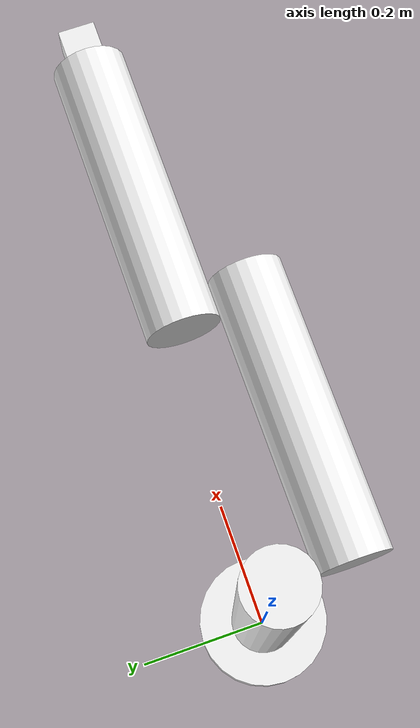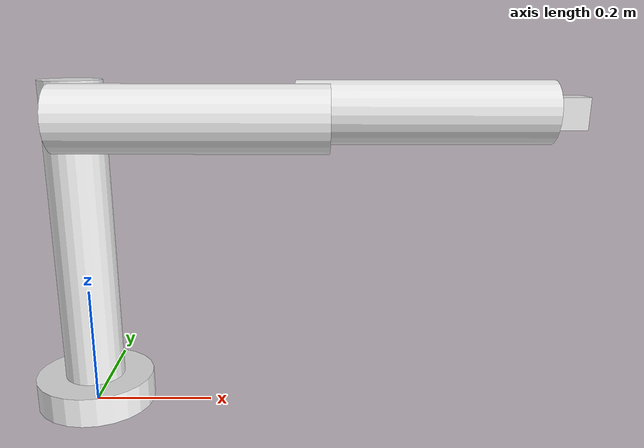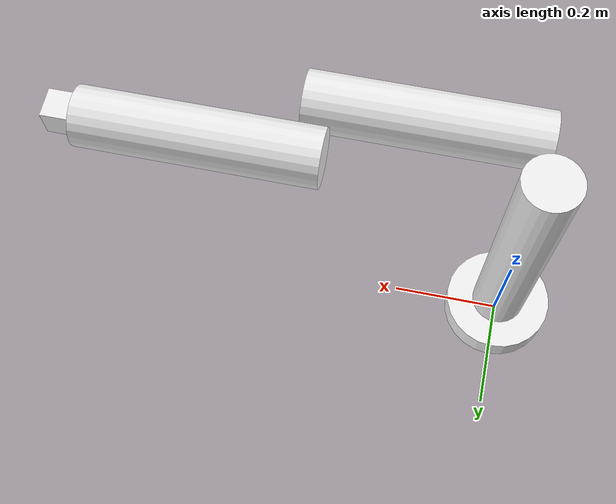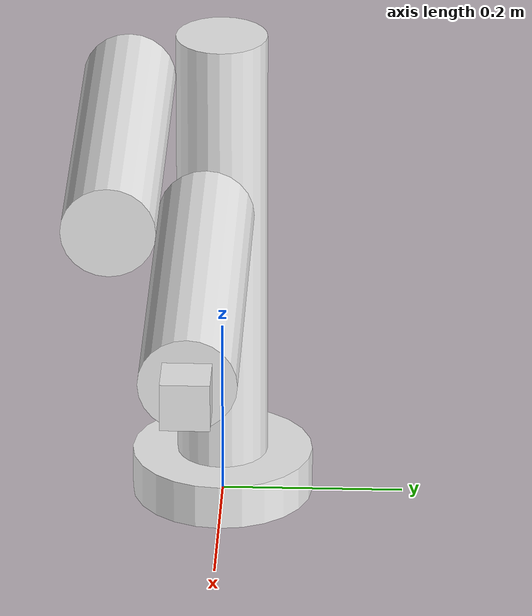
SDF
<sdf version='1.11'>
  <model name='pinchy'>
    <link name='root'>
      <inertial>
        <pose>0 0 2.4975024975024978e-05 0 0 0</pose>
        <mass>1001</mass>
        <inertia>
          <ixx>0.0033243756243756251</ixx>
          <ixy>0</ixy>
          <ixz>0</ixz>
          <iyy>0.0033243756243756251</iyy>
          <iyz>0</iyz>
          <izz>0.0050000000000000001</izz>
        </inertia>
      </inertial>
      <collision name='root_fixed_joint_lump__massive_block_collision_collision'>
        <pose>0 0 0 0 0 0</pose>
        <geometry>
          <box>
            <size>0.10000000000000001 0.10000000000000001 0.0001</size>
          </box>
        </geometry>
      </collision>
      <collision name='root_fixed_joint_lump__base_link_collision_1'>
        <pose>0 0 0.025000000000000001 0 0 0</pose>
        <geometry>
          <cylinder>
            <length>0.050000000000000003</length>
            <radius>0.10000000000000001</radius>
          </cylinder>
        </geometry>
      </collision>
      <visual name='root_fixed_joint_lump__massive_block_visual_visual'>
        <pose>0 0 0 0 0 0</pose>
        <geometry>
          <box>
            <size>0.10000000000000001 0.10000000000000001 0.0001</size>
          </box>
        </geometry>
        <material>
          <diffuse>0 0 0 0</diffuse>
          <ambient>0 0 0 0</ambient>
        </material>
      </visual>
      <visual name='root_fixed_joint_lump__base_link_visual_1'>
        <pose>0 0 0.025000000000000001 0 0 0</pose>
        <geometry>
          <cylinder>
            <length>0.050000000000000003</length>
            <radius>0.10000000000000001</radius>
          </cylinder>
        </geometry>
        <material>
          <diffuse>0.9375 0.9375 0.9375 1</diffuse>
          <ambient>0.9375 0.9375 0.9375 1</ambient>
        </material>
      </visual>
    </link>
    <joint name='base_link_to_torso' type='revolute'>
      <pose relative_to='root'>0 0 0.050000000000000003 0 0 0</pose>
      <parent>root</parent>
      <child>torso</child>
      <axis>
        <xyz>0 0 1</xyz>
        <limit>
          <lower>-inf</lower>
          <upper>inf</upper>
        </limit>
        <dynamics>
          <spring_reference>0</spring_reference>
          <spring_stiffness>0</spring_stiffness>
        </dynamics>
      </axis>
    </joint>
    <link name='torso'>
      <pose relative_to='base_link_to_torso'>0 0 0 0 0 0</pose>
      <inertial>
        <pose>0 0 0.25 0 0 0</pose>
        <mass>1</mass>
        <inertia>
          <ixx>0.0021459999999999999</ixx>
          <ixy>0</ixy>
          <ixz>0</ixz>
          <iyy>0.0021459999999999999</iyy>
          <iyz>0</iyz>
          <izz>0.00125</izz>
        </inertia>
      </inertial>
      <collision name='torso_collision'>
        <pose>0 0 0.25 0 0 0</pose>
        <geometry>
          <cylinder>
            <length>0.5</length>
            <radius>0.050000000000000003</radius>
          </cylinder>
        </geometry>
      </collision>
      <visual name='torso_visual'>
        <pose>0 0 0.25 0 0 0</pose>
        <geometry>
          <cylinder>
            <length>0.5</length>
            <radius>0.050000000000000003</radius>
          </cylinder>
        </geometry>
        <material>
          <diffuse>0.9375 0.9375 0.9375 1</diffuse>
          <ambient>0.9375 0.9375 0.9375 1</ambient>
        </material>
      </visual>
    </link>
    <joint name='torso_to_upper_arm' type='revolute'>
      <pose relative_to='torso'>0 -0.10000000000000001 0.45000000000000001 3.1415926535897931 1.5707926536359933 3.1415926535897931</pose>
      <parent>torso</parent>
      <child>upper_arm</child>
      <axis>
        <xyz>0 1 0</xyz>
        <limit>
          <lower>-inf</lower>
          <upper>inf</upper>
        </limit>
        <dynamics>
          <spring_reference>0</spring_reference>
          <spring_stiffness>0</spring_stiffness>
        </dynamics>
      </axis>
    </joint>
    <link name='upper_arm'>
      <pose relative_to='torso_to_upper_arm'>0 0 0 0 0 0</pose>
      <inertial>
        <pose>0 0 0.20000000000000001 0 0 0</pose>
        <mass>1</mass>
        <inertia>
          <ixx>0.01396</ixx>
          <ixy>0</ixy>
          <ixz>0</ixz>
          <iyy>0.01396</iyy>
          <iyz>0</iyz>
          <izz>0.00125</izz>
        </inertia>
      </inertial>
      <collision name='upper_arm_collision'>
        <pose>0 0 0.20000000000000001 0 0 0</pose>
        <geometry>
          <cylinder>
            <length>0.40000000000000002</length>
            <radius>0.050000000000000003</radius>
          </cylinder>
        </geometry>
      </collision>
      <visual name='upper_arm_visual'>
        <pose>0 0 0.20000000000000001 0 0 0</pose>
        <geometry>
          <cylinder>
            <length>0.40000000000000002</length>
            <radius>0.050000000000000003</radius>
          </cylinder>
        </geometry>
        <material>
          <diffuse>0.9375 0.9375 0.9375 1</diffuse>
          <ambient>0.9375 0.9375 0.9375 1</ambient>
        </material>
      </visual>
    </link>
    <joint name='upper_arm_to_lower_arm' type='revolute'>
      <pose relative_to='upper_arm'>0 0.10000000000000001 0.34999999999999998 0 0 0</pose>
      <parent>upper_arm</parent>
      <child>lower_arm</child>
      <axis>
        <xyz>0 1 0</xyz>
        <limit>
          <lower>-inf</lower>
          <upper>inf</upper>
        </limit>
        <dynamics>
          <spring_reference>0</spring_reference>
          <spring_stiffness>0</spring_stiffness>
        </dynamics>
      </axis>
    </joint>
    <link name='lower_arm'>
      <pose relative_to='upper_arm_to_lower_arm'>0 0 0 0 0 0</pose>
      <inertial>
        <pose>0 0 0.20000000000000001 0 0 0</pose>
        <mass>1</mass>
        <inertia>
          <ixx>0.01396</ixx>
          <ixy>0</ixy>
          <ixz>0</ixz>
          <iyy>0.01396</iyy>
          <iyz>0</iyz>
          <izz>0.00125</izz>
        </inertia>
      </inertial>
      <collision name='lower_arm_collision'>
        <pose>0 0 0.20000000000000001 0 0 0</pose>
        <geometry>
          <cylinder>
            <length>0.40000000000000002</length>
            <radius>0.050000000000000003</radius>
          </cylinder>
        </geometry>
      </collision>
      <visual name='lower_arm_visual'>
        <pose>0 0 0.20000000000000001 0 0 0</pose>
        <geometry>
          <cylinder>
            <length>0.40000000000000002</length>
            <radius>0.050000000000000003</radius>
          </cylinder>
        </geometry>
        <material>
          <diffuse>0.9375 0.9375 0.9375 1</diffuse>
          <ambient>0.9375 0.9375 0.9375 1</ambient>
        </material>
      </visual>
    </link>
    <joint name='lower_arm_to_hand' type='revolute'>
      <pose relative_to='lower_arm'>0 0 0.42499999999999999 0 0 0</pose>
      <parent>lower_arm</parent>
      <child>hand</child>
      <axis>
        <xyz>0 1 0</xyz>
        <limit>
          <lower>-inf</lower>
          <upper>inf</upper>
        </limit>
        <dynamics>
          <spring_reference>0</spring_reference>
          <spring_stiffness>0</spring_stiffness>
        </dynamics>
      </axis>
    </joint>
    <link name='hand'>
      <pose relative_to='lower_arm_to_hand'>0 0 0 0 0 0</pose>
      <inertial>
        <pose>0 0 0 0 0 0</pose>
        <mass>1</mass>
        <inertia>
          <ixx>0.00042000000000000002</ixx>
          <ixy>0</ixy>
          <ixz>0</ixz>
          <iyy>0.00042000000000000002</iyy>
          <iyz>0</iyz>
          <izz>0.00042000000000000002</izz>
        </inertia>
      </inertial>
      <collision name='hand_collision'>
        <pose>0 0 0 0 0 0</pose>
        <geometry>
          <box>
            <size>0.050000000000000003 0.050000000000000003 0.050000000000000003</size>
          </box>
        </geometry>
      </collision>
      <visual name='hand_visual'>
        <pose>0 0 0 0 0 0</pose>
        <geometry>
          <box>
            <size>0.050000000000000003 0.050000000000000003 0.050000000000000003</size>
          </box>
        </geometry>
        <material>
          <diffuse>0.9375 0.9375 0.9375 1</diffuse>
          <ambient>0.9375 0.9375 0.9375 1</ambient>
        </material>
      </visual>
    </link>
    <frame name='massive_block_to_base_link' attached_to='massive_block'>
      <pose>0 0 0 0 0 0</pose>
    </frame>
    <frame name='base_link' attached_to='massive_block_to_base_link'>
      <pose>0 0 0 0 0 0</pose>
    </frame>
    <frame name='root_to_massive_block' attached_to='root'>
      <pose>0 0 0 0 0 0</pose>
    </frame>
    <frame name='massive_block' attached_to='root_to_massive_block'>
      <pose>0 0 0 0 0 0</pose>
    </frame>
  </model>
</sdf>
